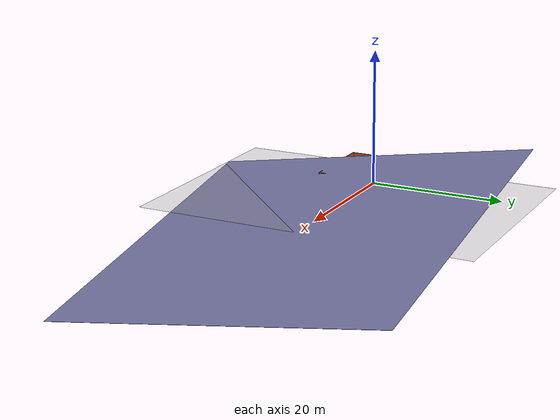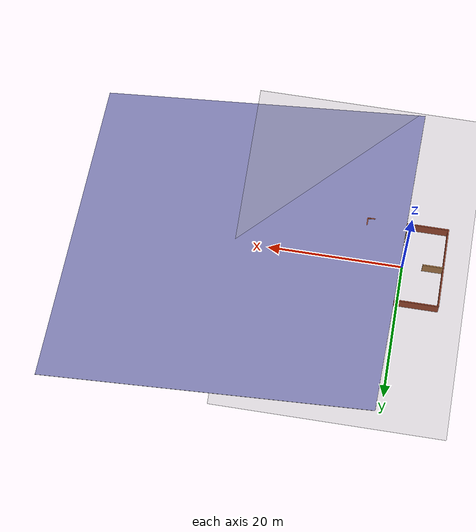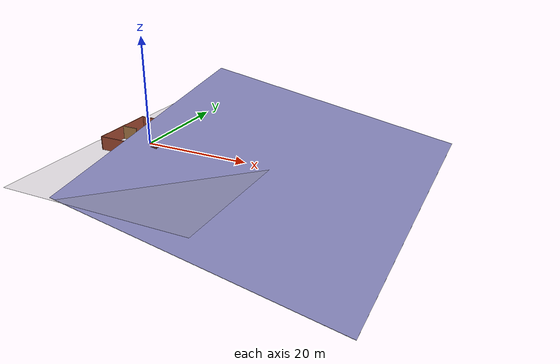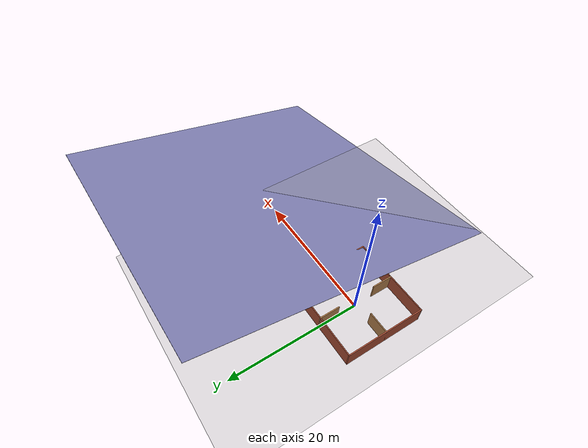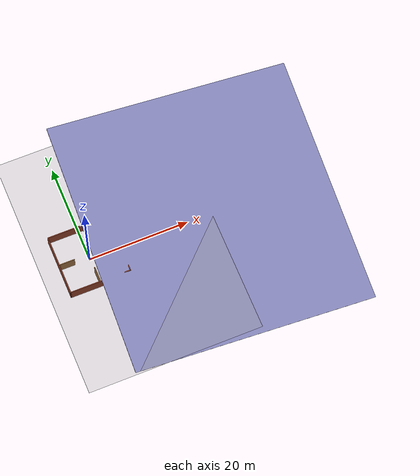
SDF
<?xml version="1.0" ?>
<sdf version="1.6">
  <world name="flat_and_slope_world">

  <!-- This is a comment in XML -->

    <!-- Physics settings -->
    <physics name="1ms" type="ignored">
      <max_step_size>0.001</max_step_size>
      <real_time_factor>1.0</real_time_factor>
    </physics>

    <!-- Plugins -->
    <plugin filename="gz-sim-contact-system" name="gz::sim::systems::Contact" />
    <plugin filename="gz-sim-imu-system" name="gz::sim::systems::Imu" />
    <plugin filename="gz-sim-physics-system" name="gz::sim::systems::Physics" />
    <plugin filename="gz-sim-scene-broadcaster-system" name="gz::sim::systems::SceneBroadcaster" />
    <plugin filename="gz-sim-sensors-system" name="gz::sim::systems::Sensors" />
    <plugin filename="gz-sim-user-commands-system" name="gz::sim::systems::UserCommands" />

    <!-- Spherical coordinates (same as before) -->
    <spherical_coordinates>
      <surface_model>EARTH_WGS84</surface_model>
      <world_frame_orientation>ENU</world_frame_orientation>
      <latitude_deg>50.088384</latitude_deg>
      <longitude_deg>19.939128</longitude_deg>
      <elevation>0</elevation>
      <heading_deg>0</heading_deg>
    </spherical_coordinates>

    <!-- Sun light -->
    <light type="directional" name="sun">
      <cast_shadows>true</cast_shadows>
      <pose>0 0 10 0 0 0</pose>
      <diffuse>0.8 0.8 0.8 1</diffuse>
      <specular>0.2 0.2 0.2 1</specular>
      <attenuation>
        <range>1000</range>
        <constant>0.9</constant>
        <linear>0.01</linear>
        <quadratic>0.001</quadratic>
      </attenuation>
      <direction>-0.5 0.1 -0.9</direction>
    </light>

    <!-- Flat ground -->
    <model name="flat_ground">
      <static>true</static>
      <link name="link">
        <collision name="collision">
          <geometry>
            <plane>
              <normal>0 0 1</normal>
              <size>50 50</size>
            </plane>
          </geometry>
        </collision>
        <visual name="visual">
          <geometry>
            <plane>
              <normal>0 0 1</normal>
              <size>50 50</size>
            </plane>
          </geometry>
          <material>
            <ambient>0.6 0.6 0.6 1</ambient>
            <diffuse>0.6 0.6 0.6 1</diffuse>
          </material>
        </visual>
      </link>
    </model>

    <!---
       Slope Model
       Rotated plane at 10° (0.1745 rad) pitch along y-axis
      -->
    <model name="slope">
      <static>true</static>
      <!-- pose: x y z roll pitch yaw -->
      <link name="link">
        <pose>25 0 0 0 0.1745 0</pose> <!-- pitched 10° along y-axis (0.1745 rad) -->
        <collision name="collision">
          <geometry>
            <plane>
              <normal>0 -0.1736 0.9848</normal> <!-- perpendicular to 10° slope -->
              <size>50 50</size>
            </plane>
          </geometry>
        </collision>
        <visual name="visual">
          <geometry>
            <plane>
              <normal>0 -0.1736 0.9848</normal>
              <size>50 50</size>
            </plane>
          </geometry>
          <material>
            <ambient>0.5 0.5 0.7 1</ambient>
            <diffuse>0.5 0.5 0.7 1</diffuse>
          </material>
        </visual>
      </link>
    </model>

    <!-- Optional included model -->
    <model name="td7_world">
      <static>1</static>
      <include>
        <uri>model://td7_world</uri>
      </include>
    </model>

  </world>
</sdf>

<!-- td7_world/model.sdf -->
<sdf version='1.7'>
  <model name='td7_world'>
    <pose>0 0 0 0 -0 0</pose>
    <link name='Wall_0'>
      <collision name='Wall_0_Collision'>
        <geometry>
          <box>
            <size>12.15 0.15 2.5</size>
          </box>
        </geometry>
        <pose>0 0 1.25 0 -0 0</pose>
      </collision>
      <visual name='Wall_0_Visual'>
        <pose>0 0 1.25 0 -0 0</pose>
        <geometry>
          <box>
            <size>12.15 0.15 2.5</size>
          </box>
        </geometry>
        <material>
          <script>
            <uri>file://media/materials/scripts/gazebo.material</uri>
            <name>Gazebo/Bricks</name>
          </script>
          <ambient>1 1 1 1</ambient>
        </material>
        <meta>
          <layer>0</layer>
        </meta>
      </visual>
      <pose>0 6 0 0 -0 0</pose>
    </link>
    <link name='Wall_1'>
      <collision name='Wall_1_Collision'>
        <geometry>
          <box>
            <size>12.15 0.15 2.5</size>
          </box>
        </geometry>
        <pose>0 0 1.25 0 -0 0</pose>
      </collision>
      <visual name='Wall_1_Visual'>
        <pose>0 0 1.25 0 -0 0</pose>
        <geometry>
          <box>
            <size>12.15 0.15 2.5</size>
          </box>
        </geometry>
        <material>
          <script>
            <uri>file://media/materials/scripts/gazebo.material</uri>
            <name>Gazebo/Bricks</name>
          </script>
          <ambient>1 1 1 1</ambient>
        </material>
        <meta>
          <layer>0</layer>
        </meta>
      </visual>
      <pose>6 0 0 0 -0 -1.5708</pose>
    </link>
    <link name='Wall_11'>
      <collision name='Wall_11_Collision'>
        <geometry>
          <box>
            <size>3.15 0.15 2.5</size>
          </box>
        </geometry>
        <pose>0 0 1.25 0 -0 0</pose>
      </collision>
      <visual name='Wall_11_Visual'>
        <pose>0 0 1.25 0 -0 0</pose>
        <geometry>
          <box>
            <size>3.15 0.15 2.5</size>
          </box>
        </geometry>
        <material>
          <script>
            <uri>file://media/materials/scripts/gazebo.material</uri>
            <name>Gazebo/Wood</name>
          </script>
          <ambient>1 1 1 1</ambient>
        </material>
        <meta>
          <layer>0</layer>
        </meta>
      </visual>
      <pose>4.5 0 0 0 -0 3.14159</pose>
    </link>
    <link name='Wall_2'>
      <collision name='Wall_2_Collision'>
        <geometry>
          <box>
            <size>12.15 0.15 2.5</size>
          </box>
        </geometry>
        <pose>0 0 1.25 0 -0 0</pose>
      </collision>
      <visual name='Wall_2_Visual'>
        <pose>0 0 1.25 0 -0 0</pose>
        <geometry>
          <box>
            <size>12.15 0.15 2.5</size>
          </box>
        </geometry>
        <material>
          <script>
            <uri>file://media/materials/scripts/gazebo.material</uri>
            <name>Gazebo/Bricks</name>
          </script>
          <ambient>1 1 1 1</ambient>
        </material>
        <meta>
          <layer>0</layer>
        </meta>
      </visual>
      <pose>0 -6 0 0 -0 3.14159</pose>
    </link>
    <link name='Wall_3'>
      <collision name='Wall_3_Collision'>
        <geometry>
          <box>
            <size>12.15 0.15 2.5</size>
          </box>
        </geometry>
        <pose>0 0 1.25 0 -0 0</pose>
      </collision>
      <visual name='Wall_3_Visual'>
        <pose>0 0 1.25 0 -0 0</pose>
        <geometry>
          <box>
            <size>12.15 0.15 2.5</size>
          </box>
        </geometry>
        <material>
          <script>
            <uri>file://media/materials/scripts/gazebo.material</uri>
            <name>Gazebo/Bricks</name>
          </script>
          <ambient>1 1 1 1</ambient>
        </material>
        <meta>
          <layer>0</layer>
        </meta>
      </visual>
      <pose>-6 0 0 0 -0 1.5708</pose>
    </link>
    <link name='Wall_5'>
      <collision name='Wall_5_Collision'>
        <geometry>
          <box>
            <size>3.15 0.15 2.5</size>
          </box>
        </geometry>
        <pose>0 0 1.25 0 -0 0</pose>
      </collision>
      <visual name='Wall_5_Visual'>
        <pose>0 0 1.25 0 -0 0</pose>
        <geometry>
          <box>
            <size>3.15 0.15 2.5</size>
          </box>
        </geometry>
        <material>
          <script>
            <uri>file://media/materials/scripts/gazebo.material</uri>
            <name>Gazebo/Wood</name>
          </script>
          <ambient>1 1 1 1</ambient>
        </material>
        <meta>
          <layer>0</layer>
        </meta>
      </visual>
      <pose>0 4.5 0 0 -0 -1.5708</pose>
    </link>
    <link name='Wall_7'>
      <collision name='Wall_7_Collision'>
        <geometry>
          <box>
            <size>3.15 0.15 2.5</size>
          </box>
        </geometry>
        <pose>0 0 1.25 0 -0 0</pose>
      </collision>
      <visual name='Wall_7_Visual'>
        <pose>0 0 1.25 0 -0 0</pose>
        <geometry>
          <box>
            <size>3.15 0.15 2.5</size>
          </box>
        </geometry>
        <material>
          <script>
            <uri>file://media/materials/scripts/gazebo.material</uri>
            <name>Gazebo/Wood</name>
          </script>
          <ambient>1 1 1 1</ambient>
        </material>
        <meta>
          <layer>0</layer>
        </meta>
      </visual>
      <pose>0 -4.5 0 0 -0 1.5708</pose>
    </link>
    <link name='Wall_9'>
      <collision name='Wall_9_Collision'>
        <geometry>
          <box>
            <size>3.15 0.15 2.5</size>
          </box>
        </geometry>
        <pose>0 0 1.25 0 -0 0</pose>
      </collision>
      <visual name='Wall_9_Visual'>
        <pose>0 0 1.25 0 -0 0</pose>
        <geometry>
          <box>
            <size>3.15 0.15 2.5</size>
          </box>
        </geometry>
        <material>
          <script>
            <uri>file://media/materials/scripts/gazebo.material</uri>
            <name>Gazebo/Wood</name>
          </script>
          <ambient>1 1 1 1</ambient>
        </material>
        <meta>
          <layer>0</layer>
        </meta>
      </visual>
      <pose>-4.5 0 0 0 -0 0</pose>
    </link>
    <static>1</static>
  </model>
</sdf>
